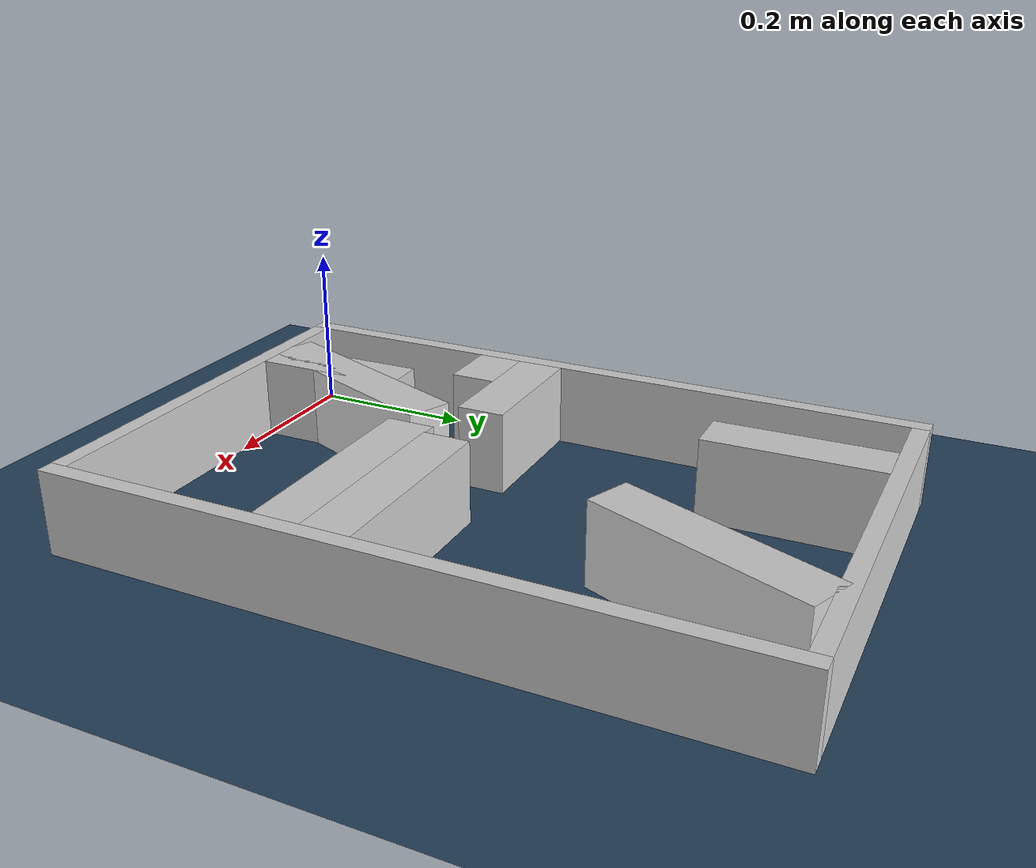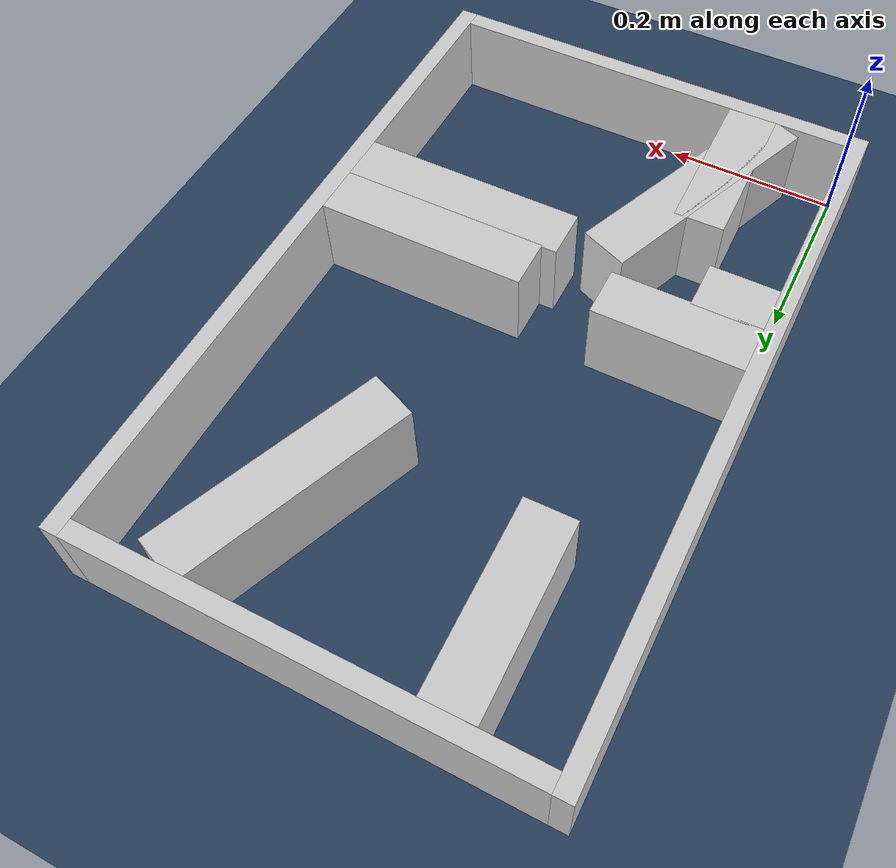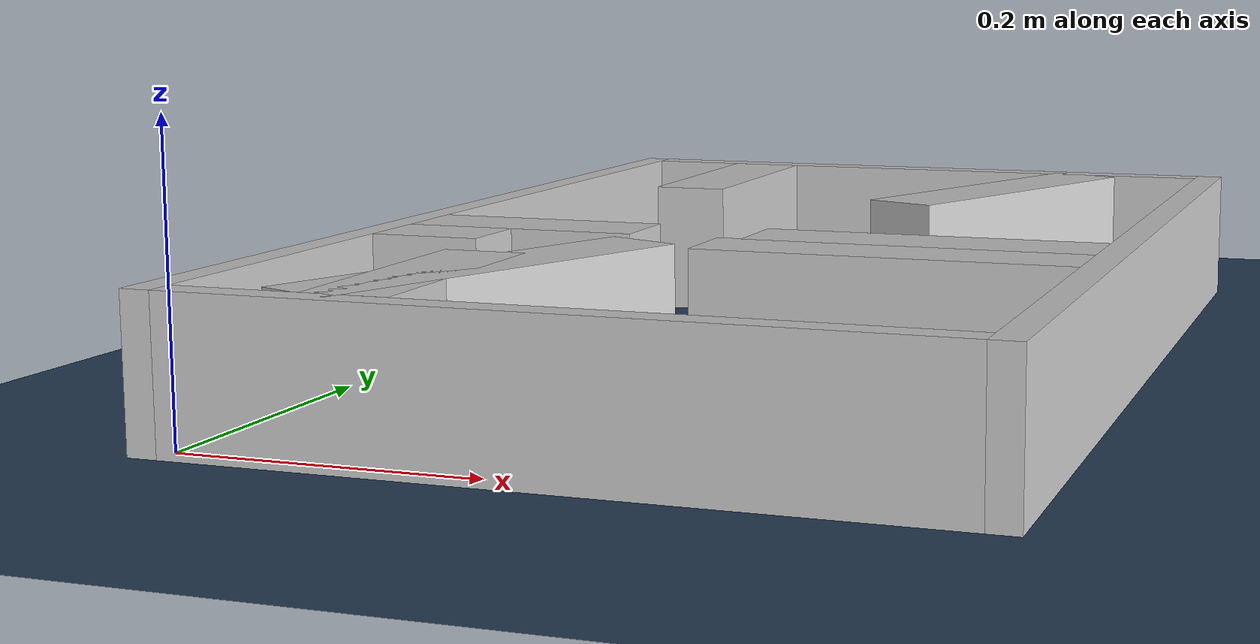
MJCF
<?xml version="1.0" ?>
<mujoco model="generated_real_template">
  <compiler angle="degree"/>
  <option timestep="0.002" integrator="implicitfast" iterations="100" cone="elliptic"/>
  <default>
    <geom density="1"/>
  </default>
  <asset>
    <texture builtin="gradient" height="3072" rgb1="0.3 0.5 0.7" rgb2="0 0 0" type="skybox" width="512"/>
    <texture builtin="checker" height="300" mark="edge" markrgb="0.8 0.8 0.8" name="groundplane" rgb1="0.2 0.3 0.4" rgb2="0.1 0.2 0.3" type="2d" width="300"/>
    <material name="groundplane" reflectance="0.2" texrepeat="5 5" texture="groundplane" texuniform="true"/>
  </asset>
  <worldbody>
    <light dir="0 0 -1" directional="true" pos="0 0 1.5"/>
    <geom name="floor" type="plane" condim="4" friction="0.5 0.005 0.001" material="groundplane" size="0 0 0.05"/>
    <body name="walls">
      <geom name="wall_boundary_left" type="box" condim="4" friction="1.0 0.005 0.0001" rgba="0.8 0.8 0.8 1" pos="-0.010000 0.387500 0.050000" euler="0 0 0.000000" size="0.010000 0.407500 0.050000"/>
      <geom name="wall_boundary_right" type="box" condim="4" friction="1.0 0.005 0.0001" rgba="0.8 0.8 0.8 1" pos="0.500000 0.387500 0.050000" euler="0 0 0.000000" size="0.010000 0.407500 0.050000"/>
      <geom name="wall_boundary_bottom" type="box" condim="4" friction="1.0 0.005 0.0001" rgba="0.8 0.8 0.8 1" pos="0.245000 -0.010000 0.050000" euler="0 0 0.000000" size="0.245000 0.010000 0.050000"/>
      <geom name="wall_boundary_top" type="box" condim="4" friction="1.0 0.005 0.0001" rgba="0.8 0.8 0.8 1" pos="0.245000 0.785000 0.050000" euler="0 0 0.000000" size="0.245000 0.010000 0.050000"/>
      <geom name="wall_inner_1_1" type="box" condim="4" friction="1.0 0.005 0.0001" rgba="0.8 0.8 0.8 1" pos="0.104790 0.672832 0.050000" euler="0 0 -89.196799" size="0.102178 0.028500 0.050000"/>
      <geom name="wall_inner_1_2" type="box" condim="4" friction="1.0 0.005 0.0001" rgba="0.8 0.8 0.8 1" pos="0.112933 0.092028 0.050000" euler="0 0 -89.196799" size="0.092037 0.028500 0.050000"/>
      <geom name="wall_inner_2_1" type="box" condim="4" friction="1.0 0.005 0.0001" rgba="0.8 0.8 0.8 1" pos="0.135473 0.132667 0.050000" euler="0 0 67.884005" size="0.143204 0.028500 0.050000"/>
      <geom name="wall_inner_2_2" type="box" condim="4" friction="1.0 0.005 0.0001" rgba="0.8 0.8 0.8 1" pos="0.346208 0.651230 0.050000" euler="0 0 67.884005" size="0.133600 0.028500 0.050000"/>
      <geom name="wall_inner_3_1" type="box" condim="4" friction="1.0 0.005 0.0001" rgba="0.8 0.8 0.8 1" pos="0.084171 0.320026 0.050000" euler="0 0 0.000000" size="0.084171 0.028500 0.050000"/>
      <geom name="wall_inner_3_2" type="box" condim="4" friction="1.0 0.005 0.0001" rgba="0.8 0.8 0.8 1" pos="0.369655 0.320026 0.050000" euler="0 0 0.000000" size="0.120345 0.028500 0.050000"/>
      <geom name="wall_inner_4_1" type="box" condim="4" friction="1.0 0.005 0.0001" rgba="0.8 0.8 0.8 1" pos="0.039325 0.265282 0.050000" euler="0 0 0.000000" size="0.039325 0.028500 0.050000"/>
      <geom name="wall_inner_4_2" type="box" condim="4" friction="1.0 0.005 0.0001" rgba="0.8 0.8 0.8 1" pos="0.360948 0.265282 0.050000" euler="0 0 0.000000" size="0.129052 0.028500 0.050000"/>
    </body>
  </worldbody>
</mujoco>
